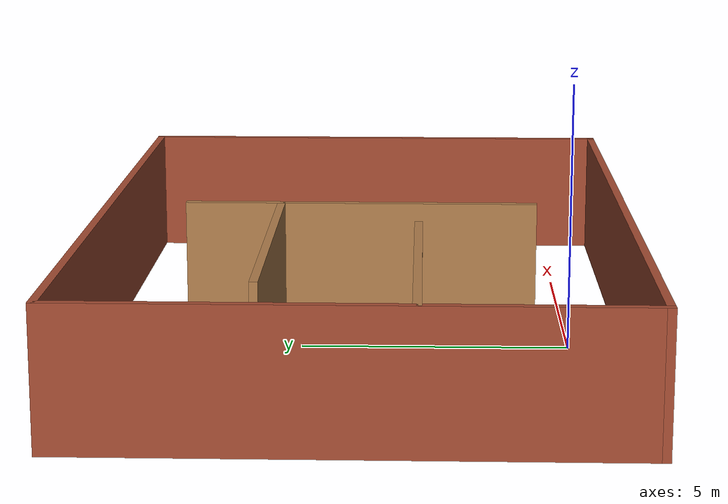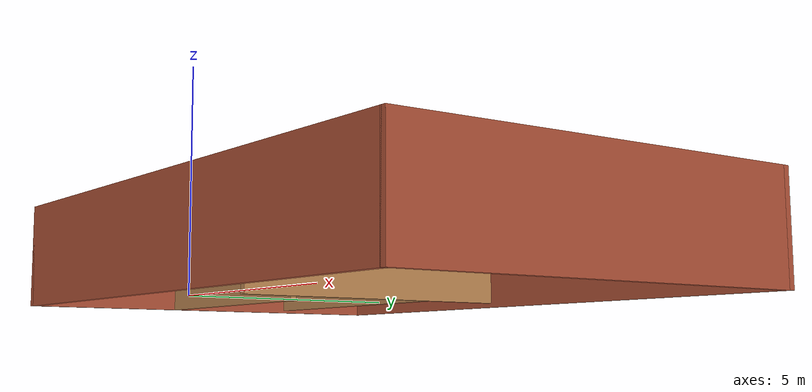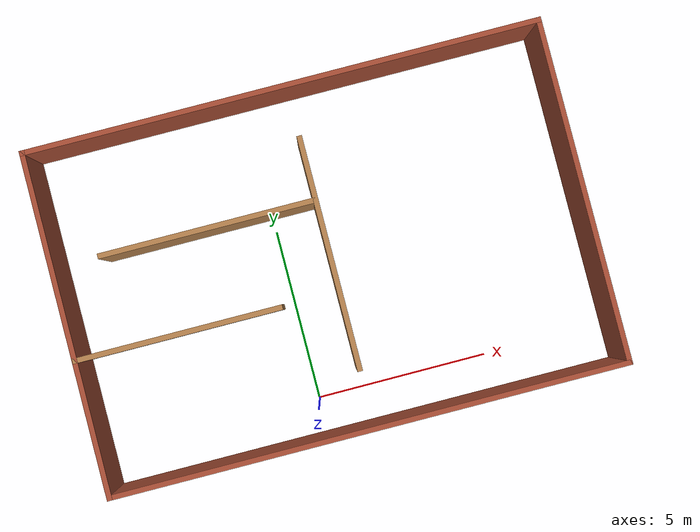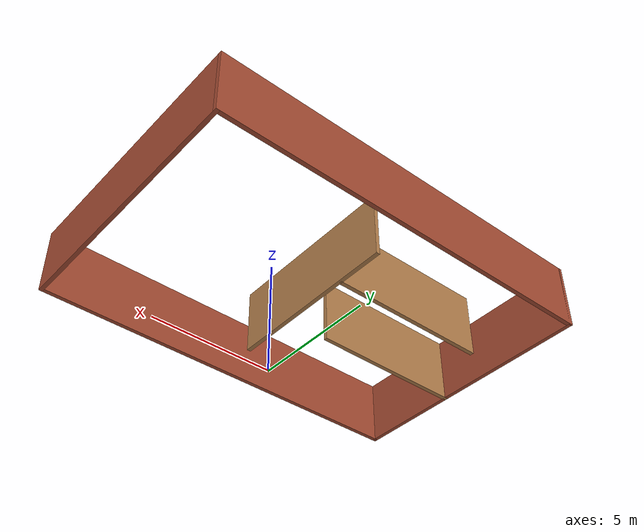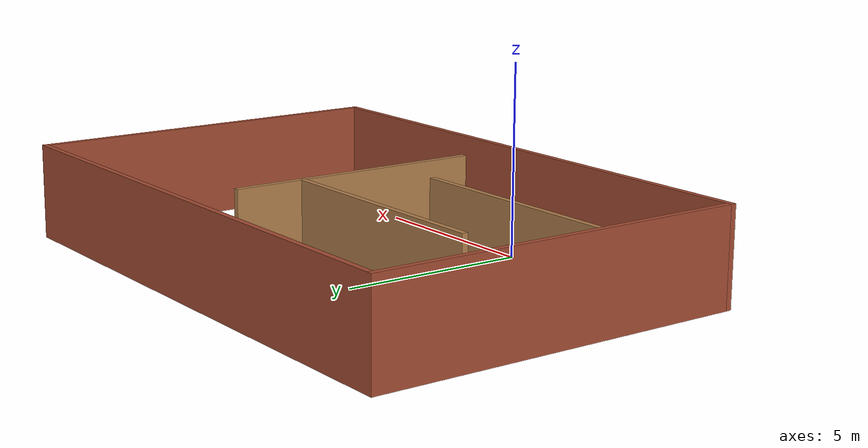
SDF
<?xml version='1.0'?>
<sdf version='1.7'>
  <model name='cafeteria_walls_v2'>
    <pose>1.16119 3.8465 0 0 -0 0</pose>
    <link name='Wall_0'>
      <collision name='Wall_0_Collision'>
        <geometry>
          <box>
            <size>10 0.15 2.5</size>
          </box>
        </geometry>
        <pose>0 0 1.25 0 -0 0</pose>
      </collision>
      <visual name='Wall_0_Visual'>
        <pose>0 0 1.25 0 -0 0</pose>
        <geometry>
          <box>
            <size>10 0.15 2.5</size>
          </box>
        </geometry>
        <material>
          <script>
            <uri>file://media/materials/scripts/gazebo.material</uri>
            <name>Gazebo/Bricks</name>
          </script>
          <ambient>1 1 1 1</ambient>
        </material>
        <meta>
          <layer>0</layer>
        </meta>
      </visual>
      <pose>-7.425 0 0 0 -0 1.5708</pose>
    </link>
    <link name='Wall_13'>
      <collision name='Wall_13_Collision'>
        <geometry>
          <box>
            <size>6.75 0.15 2.5</size>
          </box>
        </geometry>
        <pose>0 0 1.25 0 -0 0</pose>
      </collision>
      <visual name='Wall_13_Visual'>
        <pose>0 0 1.25 0 -0 0</pose>
        <geometry>
          <box>
            <size>6.75 0.15 2.5</size>
          </box>
        </geometry>
        <material>
          <script>
            <uri>file://media/materials/scripts/gazebo.material</uri>
            <name>Gazebo/Wood</name>
          </script>
          <ambient>1 1 1 1</ambient>
        </material>
        <meta>
          <layer>0</layer>
        </meta>
      </visual>
      <pose>0.15004 0.085444 0 0 -0 -1.5708</pose>
    </link>
    <link name='Wall_15'>
      <collision name='Wall_15_Collision'>
        <geometry>
          <box>
            <size>6.25 0.15 2.5</size>
          </box>
        </geometry>
        <pose>0 0 1.25 0 -0 0</pose>
      </collision>
      <visual name='Wall_15_Visual'>
        <pose>0 0 1.25 0 -0 0</pose>
        <geometry>
          <box>
            <size>6.25 0.15 2.5</size>
          </box>
        </geometry>
        <material>
          <script>
            <uri>file://media/materials/scripts/gazebo.material</uri>
            <name>Gazebo/Wood</name>
          </script>
          <ambient>1 1 1 1</ambient>
        </material>
        <meta>
          <layer>0</layer>
        </meta>
      </visual>
      <pose>-2.97072 1.61652 0 0 -0 3.14159</pose>
    </link>
    <link name='Wall_19'>
      <collision name='Wall_19_Collision'>
        <geometry>
          <box>
            <size>6 0.15 2.5</size>
          </box>
        </geometry>
        <pose>0 0 1.25 0 -0 0</pose>
      </collision>
      <visual name='Wall_19_Visual'>
        <pose>0 0 1.25 0 -0 0</pose>
        <geometry>
          <box>
            <size>6 0.15 2.5</size>
          </box>
        </geometry>
        <material>
          <script>
            <uri>file://media/materials/scripts/gazebo.material</uri>
            <name>Gazebo/Wood</name>
          </script>
          <ambient>1 1 1 1</ambient>
        </material>
        <meta>
          <layer>0</layer>
        </meta>
      </visual>
      <pose>-4.48647 -1.02824 0 0 -0 0</pose>
    </link>
    <link name='Wall_2'>
      <collision name='Wall_2_Collision'>
        <geometry>
          <box>
            <size>15 0.15 2.5</size>
          </box>
        </geometry>
        <pose>0 0 1.25 0 -0 0</pose>
      </collision>
      <visual name='Wall_2_Visual'>
        <pose>0 0 1.25 0 -0 0</pose>
        <geometry>
          <box>
            <size>15 0.15 2.5</size>
          </box>
        </geometry>
        <material>
          <script>
            <uri>file://media/materials/scripts/gazebo.material</uri>
            <name>Gazebo/Bricks</name>
          </script>
          <ambient>1 1 1 1</ambient>
        </material>
        <meta>
          <layer>0</layer>
        </meta>
      </visual>
      <pose>0 -4.925 0 0 -0 0</pose>
    </link>
    <link name='Wall_3'>
      <collision name='Wall_3_Collision'>
        <geometry>
          <box>
            <size>10 0.15 2.5</size>
          </box>
        </geometry>
        <pose>0 0 1.25 0 -0 0</pose>
      </collision>
      <visual name='Wall_3_Visual'>
        <pose>0 0 1.25 0 -0 0</pose>
        <geometry>
          <box>
            <size>10 0.15 2.5</size>
          </box>
        </geometry>
        <material>
          <script>
            <uri>file://media/materials/scripts/gazebo.material</uri>
            <name>Gazebo/Bricks</name>
          </script>
          <ambient>1 1 1 1</ambient>
        </material>
        <meta>
          <layer>0</layer>
        </meta>
      </visual>
      <pose>7.425 0 0 0 -0 1.5708</pose>
    </link>
    <link name='Wall_5'>
      <collision name='Wall_5_Collision'>
        <geometry>
          <box>
            <size>15 0.15 2.5</size>
          </box>
        </geometry>
        <pose>0 0 1.25 0 -0 0</pose>
      </collision>
      <visual name='Wall_5_Visual'>
        <pose>0 0 1.25 0 -0 0</pose>
        <geometry>
          <box>
            <size>15 0.15 2.5</size>
          </box>
        </geometry>
        <material>
          <script>
            <uri>file://media/materials/scripts/gazebo.material</uri>
            <name>Gazebo/Bricks</name>
          </script>
          <ambient>1 1 1 1</ambient>
        </material>
        <meta>
          <layer>0</layer>
        </meta>
      </visual>
      <pose>0 4.925 0 0 -0 0</pose>
    </link>
    <static>1</static>
  </model>
</sdf>
